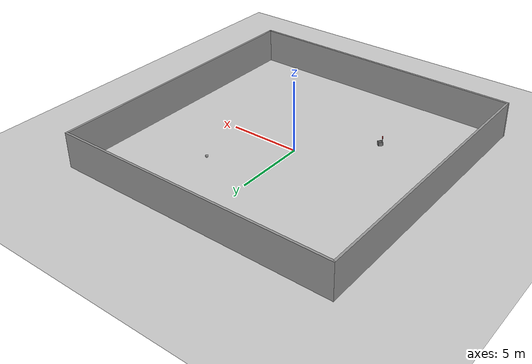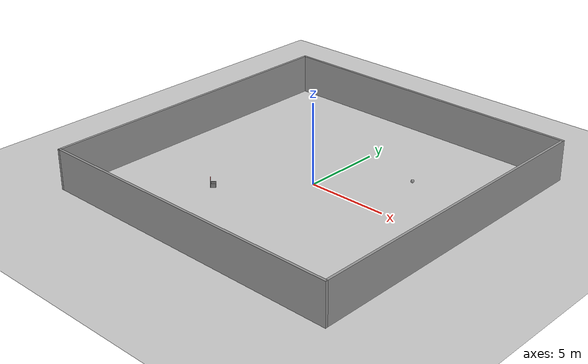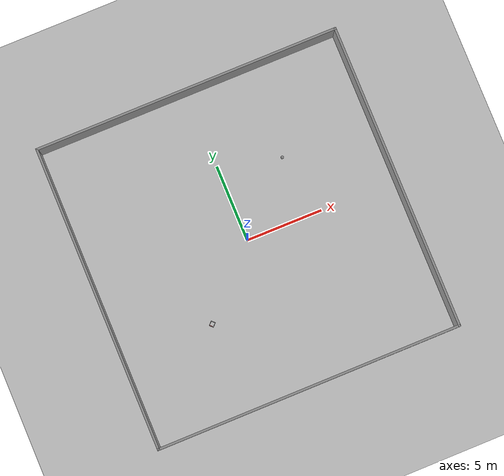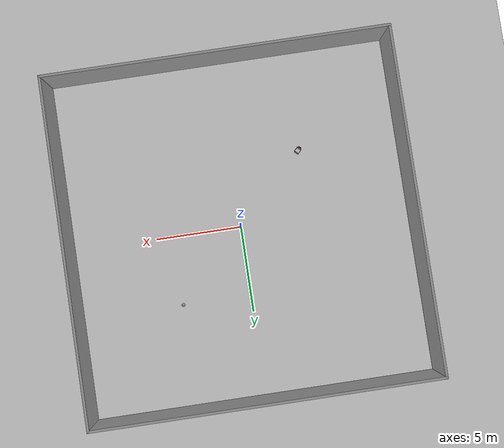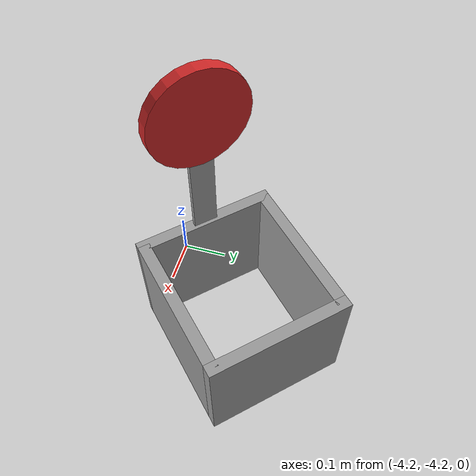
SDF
<sdf version="1.6">
 <world name="default">
  <light name="sun" type="directional">
   <pose>0 0 10 0 -0 0</pose>
   <diffuse>0.8 0.8 0.8 1</diffuse>
   <specular>0.2 0.2 0.2 1</specular>
   <attenuation>
    <range>1000</range>
    <constant>0.9</constant>
    <linear>0.01</linear>
    <quadratic>0.001</quadratic>
   </attenuation>
   <direction>-0.5 0.1 -0.9</direction>
  </light>
  <model name="ground_plane">
   <static>1</static>
   <link name="link">
    <collision name="collision">
     <geometry><plane><normal>0 0 1</normal><size>100 100</size></plane></geometry>
     <surface>
      <contact><collide_bitmask>65535</collide_bitmask></contact>
      <friction><ode><mu>100</mu><mu2>50</mu2></ode></friction>
     </surface>
    </collision>
    <visual name="visual">
     <cast_shadows>0</cast_shadows>
     <geometry><plane><normal>0 0 1</normal><size>100 100</size></plane></geometry>
     <material>
      <script><uri>file://media/materials/scripts/gazebo.material</uri><name>Gazebo/Grey</name></script>
     </material>
    </visual>
   </link>
  </model>
  <gravity>0 0 -9.8</gravity>
  <magnetic_field>6e-06 2.3e-05 -4.2e-05</magnetic_field>
  <atmosphere type="adiabatic"/>
  <physics name="default_physics" default="0" type="ode">
   <max_step_size>0.001</max_step_size>
   <real_time_factor>1</real_time_factor>
   <real_time_update_rate>1000</real_time_update_rate>
  </physics>
  <scene><ambient>0.4 0.4 0.4 1</ambient><background>0.7 0.7 0.7 1</background><shadows>1</shadows></scene>
  <spherical_coordinates>
   <surface_model>EARTH_WGS84</surface_model>
   <latitude_deg>0</latitude_deg>
   <longitude_deg>0</longitude_deg>
   <elevation>0</elevation>
   <heading_deg>0</heading_deg>
  </spherical_coordinates>
  <model name="room">
   <link name="Wall_0">
    <collision name="Wall_0_Collision">
     <geometry><box><size>20 0.15 2.5</size></box></geometry>
     <pose>0 0 1.25 0 -0 0</pose>
    </collision>
    <visual name="Wall_0_Visual">
     <pose>0 0 1.25 0 -0 0</pose>
     <geometry><box><size>20 0.15 2.5</size></box></geometry>
     <material>
      <script><uri>file://media/materials/scripts/gazebo.material</uri><name>Gazebo/Grey</name></script>
      <ambient>1 1 1 1</ambient>
     </material>
     <meta><layer>0</layer></meta>
    </visual>
    <pose>-9.925 0 0 0 -0 1.5708</pose>
   </link>
   <link name="Wall_1">
    <collision name="Wall_1_Collision">
     <geometry><box><size>20 0.15 2.5</size></box></geometry>
     <pose>0 0 1.25 0 -0 0</pose>
    </collision>
    <visual name="Wall_1_Visual">
     <pose>0 0 1.25 0 -0 0</pose>
     <geometry><box><size>20 0.15 2.5</size></box></geometry>
     <material>
      <script><uri>file://media/materials/scripts/gazebo.material</uri><name>Gazebo/Grey</name></script>
      <ambient>1 1 1 1</ambient>
     </material>
     <meta><layer>0</layer></meta>
    </visual>
    <pose>0 9.925 0 0 -0 0</pose>
   </link>
   <link name="Wall_3">
    <collision name="Wall_3_Collision">
     <geometry><box><size>20 0.15 2.5</size></box></geometry>
     <pose>0 0 1.25 0 -0 0</pose>
    </collision>
    <visual name="Wall_3_Visual">
     <pose>0 0 1.25 0 -0 0</pose>
     <geometry><box><size>20 0.15 2.5</size></box></geometry>
     <material>
      <script><uri>file://media/materials/scripts/gazebo.material</uri><name>Gazebo/Grey</name></script>
      <ambient>1 1 1 1</ambient>
     </material>
     <meta><layer>0</layer></meta>
    </visual>
    <pose>9.925 0 0 0 0 -1.5708</pose>
   </link>
   <link name="Wall_8">
    <collision name="Wall_8_Collision">
     <geometry><box><size>20 0.15 2.5</size></box></geometry>
     <pose>0 0 1.25 0 -0 0</pose>
    </collision>
    <visual name="Wall_8_Visual">
     <pose>0 0 1.25 0 -0 0</pose>
     <geometry><box><size>20 0.15 2.5</size></box></geometry>
     <material>
      <script><uri>file://media/materials/scripts/gazebo.material</uri><name>Gazebo/Grey</name></script>
      <ambient>1 1 1 1</ambient>
     </material>
     <meta><layer>0</layer></meta>
    </visual>
    <pose>0 -9.925 0 0 -0 3.14159</pose>
   </link>
   <static>1</static>
  </model>
  <model name="my_ball">
   <link name="link_0">
    <inertial>
     <mass>1</mass>
     <inertia><ixx>0.1</ixx><ixy>0</ixy><ixz>0</ixz><iyy>0.1</iyy><iyz>0</iyz><izz>0.1</izz></inertia>
    </inertial>
    <visual name="visual">
     <geometry><sphere><radius>0.1</radius></sphere></geometry>
     <material>
      <lighting>1</lighting>
      <script><uri>file://media/materials/scripts/gazebo.material</uri><name>Gazebo/Grey</name></script>
      <shader type="pixel"><normal_map>__default__</normal_map></shader>
      <ambient>1 1 1 1</ambient>
      <diffuse>1 1 1 1</diffuse>
      <specular>1 1 1 1</specular>
      <emissive>1 1 1 1</emissive>
     </material>
    </visual>
    <collision name="collision">
     <geometry><sphere><radius>0.1</radius></sphere></geometry>
     <surface>
      <friction>
       <ode><mu>1</mu><mu2>1</mu2><fdir1>0 0 0</fdir1><slip1>0</slip1><slip2>0</slip2></ode>
       <torsional>
        <coefficient>1</coefficient>
        <patch_radius>0</patch_radius>
        <surface_radius>0</surface_radius>
        <use_patch_radius>1</use_patch_radius>
        <ode><slip>0</slip></ode>
       </torsional>
      </friction>
      <bounce><restitution_coefficient>0</restitution_coefficient><threshold>1e+06</threshold></bounce>
      <contact>
       <collide_without_contact>0</collide_without_contact>
       <collide_without_contact_bitmask>1</collide_without_contact_bitmask>
       <collide_bitmask>1</collide_bitmask>
       <ode>
        <soft_cfm>0</soft_cfm>
        <soft_erp>0.2</soft_erp>
        <kp>1e+13</kp>
        <kd>1</kd>
        <max_vel>0.01</max_vel>
        <min_depth>0</min_depth>
       </ode>
       <bullet>
        <split_impulse>1</split_impulse>
        <split_impulse_penetration_threshold>-0.01</split_impulse_penetration_threshold>
        <soft_cfm>0</soft_cfm>
        <soft_erp>0.2</soft_erp>
        <kp>1e+13</kp>
        <kd>1</kd>
       </bullet>
      </contact>
     </surface>
    </collision>
   </link>
   <static>0</static>
   <pose>4 4 0.1 0 -0 0</pose>
  </model>
  <model name="my_bucket">
   <link name="link_1">
    <pose>0 -0.15 0 0 -0 0</pose>
    <inertial>
     <mass>1</mass>
     <inertia>
      <ixx>0.166667</ixx>
      <ixy>0</ixy>
      <ixz>0</ixz>
      <iyy>0.166667</iyy>
      <iyz>0</iyz>
      <izz>0.166667</izz>
     </inertia>
    </inertial>
    <visual name="visual">
     <geometry><box><size>0.3 0.025 0.25</size></box></geometry>
     <material>
      <lighting>1</lighting>
      <script><uri>file://media/materials/scripts/gazebo.material</uri><name>Gazebo/Grey</name></script>
      <shader type="pixel"><normal_map>__default__</normal_map></shader>
      <ambient>0.3 0.3 0.3 1</ambient>
      <diffuse>0.7 0.7 0.7 1</diffuse>
      <specular>0.01 0.01 0.01 1</specular>
      <emissive>0 0 0 1</emissive>
     </material>
    </visual>
    <collision name="collision">
     <geometry><box><size>0.3 0.025 0.25</size></box></geometry>
     <surface>
      <friction>
       <ode><mu>1</mu><mu2>1</mu2><fdir1>0 0 0</fdir1><slip1>0</slip1><slip2>0</slip2></ode>
       <torsional>
        <coefficient>1</coefficient>
        <patch_radius>0</patch_radius>
        <surface_radius>0</surface_radius>
        <use_patch_radius>1</use_patch_radius>
        <ode><slip>0</slip></ode>
       </torsional>
      </friction>
      <bounce><restitution_coefficient>0</restitution_coefficient><threshold>1e+06</threshold></bounce>
      <contact>
       <collide_without_contact>0</collide_without_contact>
       <collide_without_contact_bitmask>1</collide_without_contact_bitmask>
       <collide_bitmask>1</collide_bitmask>
       <ode>
        <soft_cfm>0</soft_cfm>
        <soft_erp>0.2</soft_erp>
        <kp>1e+13</kp>
        <kd>1</kd>
        <max_vel>0.01</max_vel>
        <min_depth>0</min_depth>
       </ode>
       <bullet>
        <split_impulse>1</split_impulse>
        <split_impulse_penetration_threshold>-0.01</split_impulse_penetration_threshold>
        <soft_cfm>0</soft_cfm>
        <soft_erp>0.2</soft_erp>
        <kp>1e+13</kp>
        <kd>1</kd>
       </bullet>
      </contact>
     </surface>
    </collision>
   </link>
   <link name="link_1_clone">
    <pose>-0 0.15 -0 0 -0 0</pose>
    <inertial>
     <mass>1</mass>
     <inertia>
      <ixx>0.166667</ixx>
      <ixy>0</ixy>
      <ixz>0</ixz>
      <iyy>0.166667</iyy>
      <iyz>0</iyz>
      <izz>0.166667</izz>
     </inertia>
    </inertial>
    <visual name="visual">
     <geometry><box><size>0.3 0.025 0.25</size></box></geometry>
     <material>
      <lighting>1</lighting>
      <script><uri>file://media/materials/scripts/gazebo.material</uri><name>Gazebo/Grey</name></script>
      <shader type="pixel"><normal_map>__default__</normal_map></shader>
      <ambient>0.3 0.3 0.3 1</ambient>
      <diffuse>0.7 0.7 0.7 1</diffuse>
      <specular>0.01 0.01 0.01 1</specular>
      <emissive>0 0 0 1</emissive>
     </material>
    </visual>
    <collision name="collision">
     <geometry><box><size>0.3 0.025 0.25</size></box></geometry>
     <surface>
      <friction>
       <ode><mu>1</mu><mu2>1</mu2><fdir1>0 0 0</fdir1><slip1>0</slip1><slip2>0</slip2></ode>
       <torsional>
        <coefficient>1</coefficient>
        <patch_radius>0</patch_radius>
        <surface_radius>0</surface_radius>
        <use_patch_radius>1</use_patch_radius>
        <ode><slip>0</slip></ode>
       </torsional>
      </friction>
      <bounce><restitution_coefficient>0</restitution_coefficient><threshold>1e+06</threshold></bounce>
      <contact>
       <collide_without_contact>0</collide_without_contact>
       <collide_without_contact_bitmask>1</collide_without_contact_bitmask>
       <collide_bitmask>1</collide_bitmask>
       <ode>
        <soft_cfm>0</soft_cfm>
        <soft_erp>0.2</soft_erp>
        <kp>1e+13</kp>
        <kd>1</kd>
        <max_vel>0.01</max_vel>
        <min_depth>0</min_depth>
       </ode>
       <bullet>
        <split_impulse>1</split_impulse>
        <split_impulse_penetration_threshold>-0.01</split_impulse_penetration_threshold>
        <soft_cfm>0</soft_cfm>
        <soft_erp>0.2</soft_erp>
        <kp>1e+13</kp>
        <kd>1</kd>
       </bullet>
      </contact>
     </surface>
    </collision>
   </link>
   <link name="link_1_clone_0">
    <pose>0.1375 -0 -0 0 -0 0</pose>
    <inertial>
     <mass>1</mass>
     <inertia>
      <ixx>0.166667</ixx>
      <ixy>0</ixy>
      <ixz>0</ixz>
      <iyy>0.166667</iyy>
      <iyz>0</iyz>
      <izz>0.166667</izz>
     </inertia>
    </inertial>
    <visual name="visual">
     <pose>0 0 0 0 -0 1.5708</pose>
     <geometry><box><size>0.3 0.025 0.25</size></box></geometry>
     <material>
      <lighting>1</lighting>
      <script><uri>file://media/materials/scripts/gazebo.material</uri><name>Gazebo/Grey</name></script>
      <shader type="pixel"><normal_map>__default__</normal_map></shader>
      <ambient>0.3 0.3 0.3 1</ambient>
      <diffuse>0.7 0.7 0.7 1</diffuse>
      <specular>0.01 0.01 0.01 1</specular>
      <emissive>0 0 0 1</emissive>
     </material>
    </visual>
    <collision name="collision">
     <pose>0 0 0 0 -0 1.5708</pose>
     <geometry><box><size>0.3 0.025 0.25</size></box></geometry>
     <surface>
      <friction>
       <ode><mu>1</mu><mu2>1</mu2><fdir1>0 0 0</fdir1><slip1>0</slip1><slip2>0</slip2></ode>
       <torsional>
        <coefficient>1</coefficient>
        <patch_radius>0</patch_radius>
        <surface_radius>0</surface_radius>
        <use_patch_radius>1</use_patch_radius>
        <ode><slip>0</slip></ode>
       </torsional>
      </friction>
      <bounce><restitution_coefficient>0</restitution_coefficient><threshold>1e+06</threshold></bounce>
      <contact>
       <collide_without_contact>0</collide_without_contact>
       <collide_without_contact_bitmask>1</collide_without_contact_bitmask>
       <collide_bitmask>1</collide_bitmask>
       <ode>
        <soft_cfm>0</soft_cfm>
        <soft_erp>0.2</soft_erp>
        <kp>1e+13</kp>
        <kd>1</kd>
        <max_vel>0.01</max_vel>
        <min_depth>0</min_depth>
       </ode>
       <bullet>
        <split_impulse>1</split_impulse>
        <split_impulse_penetration_threshold>-0.01</split_impulse_penetration_threshold>
        <soft_cfm>0</soft_cfm>
        <soft_erp>0.2</soft_erp>
        <kp>1e+13</kp>
        <kd>1</kd>
       </bullet>
      </contact>
     </surface>
    </collision>
   </link>
   <link name="link_1_clone_0_clone">
    <pose>-0.1375 0 -0 0 -0 0</pose>
    <inertial>
     <mass>1</mass>
     <inertia>
      <ixx>0.166667</ixx>
      <ixy>0</ixy>
      <ixz>0</ixz>
      <iyy>0.166667</iyy>
      <iyz>0</iyz>
      <izz>0.166667</izz>
     </inertia>
    </inertial>
    <visual name="visual">
     <pose>0 0 0 0 -0 1.5708</pose>
     <geometry><box><size>0.3 0.025 0.25</size></box></geometry>
     <material>
      <lighting>1</lighting>
      <script><uri>file://media/materials/scripts/gazebo.material</uri><name>Gazebo/Grey</name></script>
      <shader type="pixel"><normal_map>__default__</normal_map></shader>
      <ambient>0.3 0.3 0.3 1</ambient>
      <diffuse>0.7 0.7 0.7 1</diffuse>
      <specular>0.01 0.01 0.01 1</specular>
      <emissive>0 0 0 1</emissive>
     </material>
    </visual>
    <collision name="collision">
     <pose>0 0 0 0 -0 1.5708</pose>
     <geometry><box><size>0.3 0.025 0.25</size></box></geometry>
     <surface>
      <friction>
       <ode><mu>1</mu><mu2>1</mu2><fdir1>0 0 0</fdir1><slip1>0</slip1><slip2>0</slip2></ode>
       <torsional>
        <coefficient>1</coefficient>
        <patch_radius>0</patch_radius>
        <surface_radius>0</surface_radius>
        <use_patch_radius>1</use_patch_radius>
        <ode><slip>0</slip></ode>
       </torsional>
      </friction>
      <bounce><restitution_coefficient>0</restitution_coefficient><threshold>1e+06</threshold></bounce>
      <contact>
       <collide_without_contact>0</collide_without_contact>
       <collide_without_contact_bitmask>1</collide_without_contact_bitmask>
       <collide_bitmask>1</collide_bitmask>
       <ode>
        <soft_cfm>0</soft_cfm>
        <soft_erp>0.2</soft_erp>
        <kp>1e+13</kp>
        <kd>1</kd>
        <max_vel>0.01</max_vel>
        <min_depth>0</min_depth>
       </ode>
       <bullet>
        <split_impulse>1</split_impulse>
        <split_impulse_penetration_threshold>-0.01</split_impulse_penetration_threshold>
        <soft_cfm>0</soft_cfm>
        <soft_erp>0.2</soft_erp>
        <kp>1e+13</kp>
        <kd>1</kd>
       </bullet>
      </contact>
     </surface>
    </collision>
   </link>
   <link name="link_1_clone_1">
    <pose>-0 -0.15 0.2 0 -0 0</pose>
    <inertial>
     <mass>1</mass>
     <inertia>
      <ixx>0.166667</ixx>
      <ixy>0</ixy>
      <ixz>0</ixz>
      <iyy>0.166667</iyy>
      <iyz>0</iyz>
      <izz>0.166667</izz>
     </inertia>
    </inertial>
    <visual name="visual">
     <geometry><box><size>0.05 0.01 0.3</size></box></geometry>
     <material>
      <lighting>1</lighting>
      <script><uri>file://media/materials/scripts/gazebo.material</uri><name>Gazebo/Grey</name></script>
      <shader type="pixel"><normal_map>__default__</normal_map></shader>
      <ambient>0.3 0.3 0.3 1</ambient>
      <diffuse>0.7 0.7 0.7 1</diffuse>
      <specular>0.01 0.01 0.01 1</specular>
      <emissive>0 0 0 1</emissive>
     </material>
    </visual>
    <collision name="collision">
     <geometry><box><size>0.05 0.01 0.3</size></box></geometry>
     <surface>
      <friction>
       <ode><mu>1</mu><mu2>1</mu2><fdir1>0 0 0</fdir1><slip1>0</slip1><slip2>0</slip2></ode>
       <torsional>
        <coefficient>1</coefficient>
        <patch_radius>0</patch_radius>
        <surface_radius>0</surface_radius>
        <use_patch_radius>1</use_patch_radius>
        <ode><slip>0</slip></ode>
       </torsional>
      </friction>
      <bounce><restitution_coefficient>0</restitution_coefficient><threshold>1e+06</threshold></bounce>
      <contact>
       <collide_without_contact>0</collide_without_contact>
       <collide_without_contact_bitmask>1</collide_without_contact_bitmask>
       <collide_bitmask>1</collide_bitmask>
       <ode>
        <soft_cfm>0</soft_cfm>
        <soft_erp>0.2</soft_erp>
        <kp>1e+13</kp>
        <kd>1</kd>
        <max_vel>0.01</max_vel>
        <min_depth>0</min_depth>
       </ode>
       <bullet>
        <split_impulse>1</split_impulse>
        <split_impulse_penetration_threshold>-0.01</split_impulse_penetration_threshold>
        <soft_cfm>0</soft_cfm>
        <soft_erp>0.2</soft_erp>
        <kp>1e+13</kp>
        <kd>1</kd>
       </bullet>
      </contact>
     </surface>
    </collision>
   </link>
   <link name="link_2_clone_0_clone">
    <pose>-0 -0.15 0.4 0 -0 0</pose>
    <inertial>
     <mass>1</mass>
     <inertia><ixx>0.145833</ixx><ixy>0</ixy><ixz>0</ixz><iyy>0.145833</iyy><iyz>0</iyz><izz>0.125</izz></inertia>
    </inertial>
    <visual name="visual">
     <pose>0 0 0 1.5708 -0 0</pose>
     <geometry><cylinder><radius>0.1</radius><length>0.025</length></cylinder></geometry>
     <material>
      <lighting>1</lighting>
      <script><uri>file://media/materials/scripts/gazebo.material</uri><name>Gazebo/Red</name></script>
      <shader type="pixel"><normal_map>__default__</normal_map></shader>
      <ambient>1 0 0 1</ambient>
      <diffuse>1 0 0 1</diffuse>
      <specular>1 0 0 1</specular>
      <emissive>1 0 0 1</emissive>
     </material>
    </visual>
    <collision name="collision">
     <pose>0 0 0 1.5708 -0 0</pose>
     <geometry><cylinder><radius>0.1</radius><length>0.025</length></cylinder></geometry>
     <surface>
      <friction>
       <ode><mu>1</mu><mu2>1</mu2><fdir1>0 0 0</fdir1><slip1>0</slip1><slip2>0</slip2></ode>
       <torsional>
        <coefficient>1</coefficient>
        <patch_radius>0</patch_radius>
        <surface_radius>0</surface_radius>
        <use_patch_radius>1</use_patch_radius>
        <ode><slip>0</slip></ode>
       </torsional>
      </friction>
      <bounce><restitution_coefficient>0</restitution_coefficient><threshold>1e+06</threshold></bounce>
      <contact>
       <collide_without_contact>0</collide_without_contact>
       <collide_without_contact_bitmask>1</collide_without_contact_bitmask>
       <collide_bitmask>1</collide_bitmask>
       <ode>
        <soft_cfm>0</soft_cfm>
        <soft_erp>0.2</soft_erp>
        <kp>1e+13</kp>
        <kd>1</kd>
        <max_vel>0.01</max_vel>
        <min_depth>0</min_depth>
       </ode>
       <bullet>
        <split_impulse>1</split_impulse>
        <split_impulse_penetration_threshold>-0.01</split_impulse_penetration_threshold>
        <soft_cfm>0</soft_cfm>
        <soft_erp>0.2</soft_erp>
        <kp>1e+13</kp>
        <kd>1</kd>
       </bullet>
      </contact>
     </surface>
    </collision>
   </link>
   <joint name="link_1_JOINT_0_0" type="fixed">
    <parent>link_1</parent>
    <child>link_1_clone_1</child>
    <physics>
     <ode><limit><cfm>0</cfm><erp>0.2</erp></limit><suspension><cfm>0</cfm><erp>0.2</erp></suspension></ode>
    </physics>
   </joint>
   <joint name="link_1_JOINT_0" type="fixed">
    <parent>link_1</parent>
    <child>link_1_clone_0_clone</child>
    <physics>
     <ode><limit><cfm>0</cfm><erp>0.2</erp></limit><suspension><cfm>0</cfm><erp>0.2</erp></suspension></ode>
    </physics>
   </joint>
   <joint name="link_1_JOINT_1" type="fixed">
    <parent>link_1</parent>
    <child>link_1_clone_0</child>
    <physics>
     <ode><limit><cfm>0</cfm><erp>0.2</erp></limit><suspension><cfm>0</cfm><erp>0.2</erp></suspension></ode>
    </physics>
   </joint>
   <joint name="link_1_clone_1_JOINT_1" type="fixed">
    <parent>link_1_clone_1</parent>
    <child>link_2_clone_0_clone</child>
    <physics>
     <ode><limit><cfm>0</cfm><erp>0.2</erp></limit><suspension><cfm>0</cfm><erp>0.2</erp></suspension></ode>
    </physics>
   </joint>
   <joint name="link_1_clone_JOINT_2" type="fixed">
    <parent>link_1_clone</parent>
    <child>link_1_clone_0_clone</child>
    <physics>
     <ode><limit><cfm>0</cfm><erp>0.2</erp></limit><suspension><cfm>0</cfm><erp>0.2</erp></suspension></ode>
    </physics>
   </joint>
   <joint name="link_1_clone_JOINT_3" type="fixed">
    <parent>link_1_clone</parent>
    <child>link_1_clone_0</child>
    <physics>
     <ode><limit><cfm>0</cfm><erp>0.2</erp></limit><suspension><cfm>0</cfm><erp>0.2</erp></suspension></ode>
    </physics>
   </joint>
   <static>0</static>
   <pose>-4 -4 0.125 0 0 -0.7854</pose>
  </model>
 </world>
</sdf>
